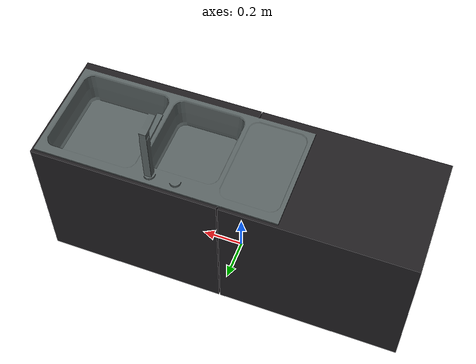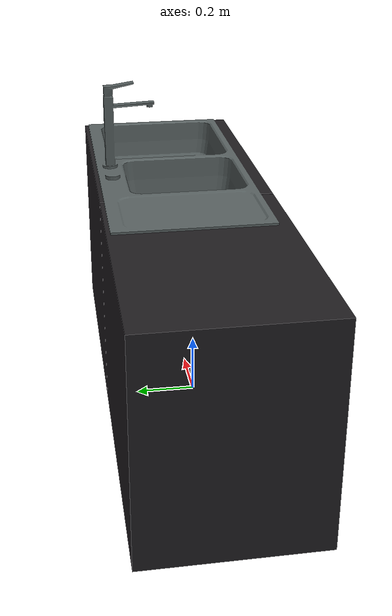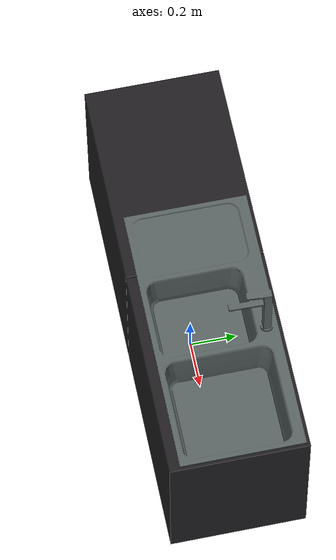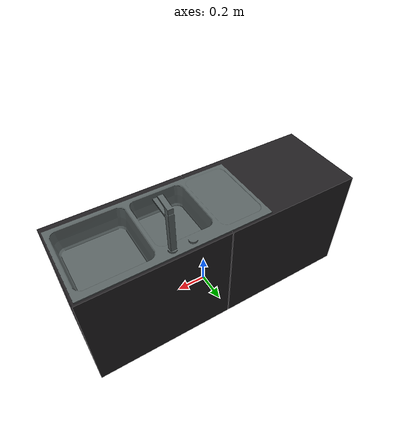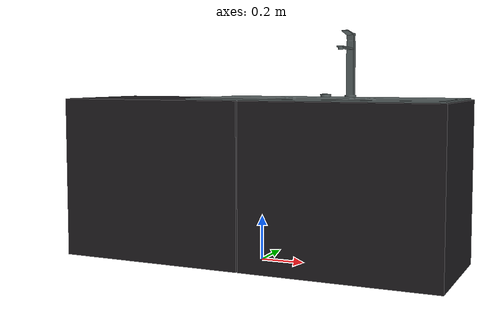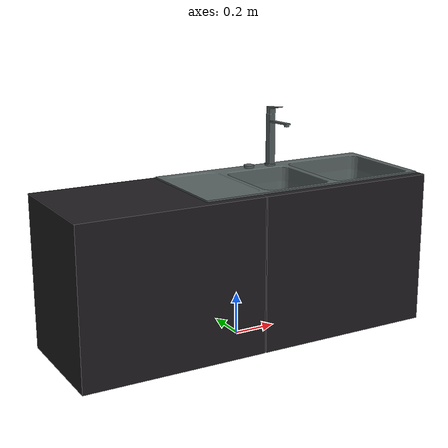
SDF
<?xml version="1.0"?>
<sdf version="1.4">
  <model name="kitchen">
    <static>true</static>
    <link name="link">
      <pose>0 0 0 0 0 0</pose>
      <collision name="collision">
        <geometry>
          <mesh>
             <uri>model://kitchen/kitchen_collision.dae</uri>
	     <scale>0.25 0.25 0.25</scale>
          </mesh>
        </geometry>
      </collision>
      <visual name="visual">
         <geometry>
          <mesh>
            <uri>model://kitchen/kitchen_visual.dae</uri>
		<scale>0.25 0.25 0.25</scale>
          </mesh>
        </geometry>
      </visual>
    </link>
  </model>
</sdf>
